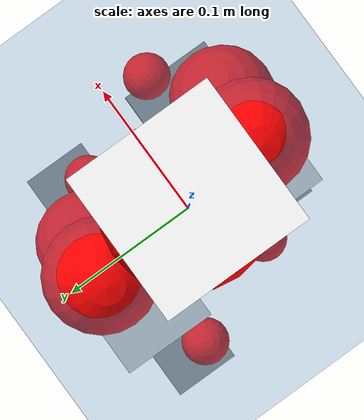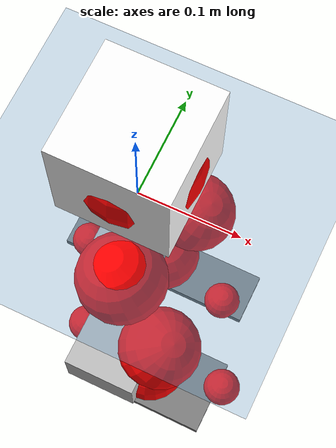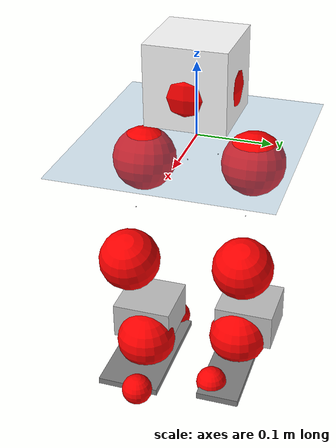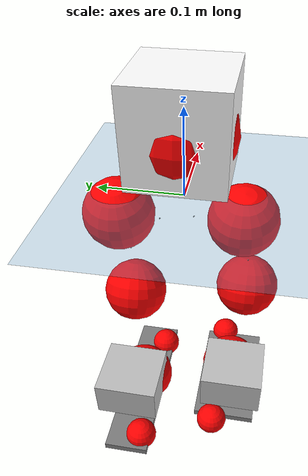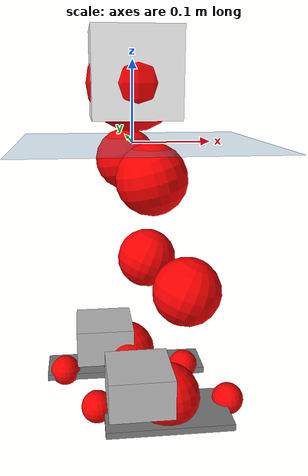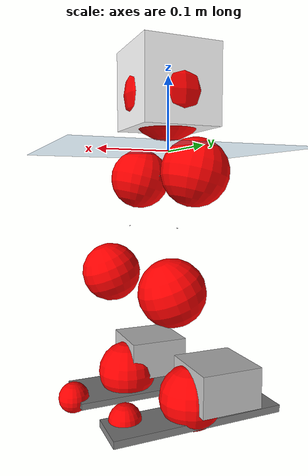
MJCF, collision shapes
<mujoco model="pi_12dof_release_v1">
  <compiler angle="radian" assetdir="assets" balanceinertia="true" inertiafromgeom="false"/>

  <option timestep="0.005" density="1.2" viscosity="2e-05"/>

  <size nkey="1"/>

  <visual>
    <quality shadowsize="8192"/>
    <map shadowclip="0.5"/>
  </visual>

  <default>
    <default class="/">
      <joint armature="0.01" damping="0.01" frictionloss="0.01"/>
      <geom contype="0" conaffinity="0" group="1" solref="-1000 -80"/>
      <site size="0.01 0.005 0.005" group="5"/>
      <general forcelimited="true" biastype="affine" gainprm="20" biasprm="0 -20 -0.5"/>
      <default class="foot">
        <geom size="0.0845 0.036 0.005" type="box" condim="6" group="4" priority="1" friction="0.9 0.2 0.2" solimp="0.015 1 0.005"/>
      </default>
      <default class="reward_collision_sphere">
        <geom group="5" rgba="1 0 0 1"/>
      </default>
    </default>
  </default>

  <asset>
    <texture type="skybox" colorspace="auto" name="//unnamed_texture_0" builtin="gradient" rgb1="0.95 0.95 0.95" rgb2="0.95 0.95 0.95" width="100" height="600"/>
    <texture type="2d" colorspace="auto" name="texplane" builtin="checker" rgb1="0.345 0.575 0.748" rgb2="0.345 0.575 0.748" markrgb="1 1 1" width="512" height="512"/>
    <material name="MatPlane" class="/" texture="texplane" texuniform="true" texrepeat="2 2" specular="0.9"/>
    <mesh name="baselink_1" class="/" file="baselink_1.STL"/>
    <mesh name="r_hip_pitch_link" class="/" file="r_hip_pitch_link.STL"/>
    <mesh name="r_hip_roll_link" class="/" file="r_hip_roll_link.STL"/>
    <mesh name="r_thigh_link" class="/" file="r_thigh_link.STL"/>
    <mesh name="r_calf_link" class="/" file="r_calf_link.STL"/>
    <mesh name="r_ankle_pitch_link" class="/" file="r_ankle_pitch_link.STL"/>
    <mesh name="r_ankle_roll_link" class="/" file="r_ankle_roll_link.STL"/>
    <mesh name="l_hip_pitch_link" class="/" file="l_hip_pitch_link.STL"/>
    <mesh name="l_hip_roll_link" class="/" file="l_hip_roll_link.STL"/>
    <mesh name="l_thigh_link" class="/" file="l_thigh_link.STL"/>
    <mesh name="l_calf_link" class="/" file="l_calf_link.STL"/>
    <mesh name="l_ankle_pitch_link" class="/" file="l_ankle_pitch_link.STL"/>
    <mesh name="l_ankle_roll_link" class="/" file="l_ankle_roll_link.STL"/>
  </asset>

  <worldbody>
    <geom name="floor" class="/" size="100 100 0.125" type="plane" group="0" material="MatPlane"/>
    <light name="toplight_shadow" class="/" pos="0 0 5" dir="0.0990148 0.0990148 -0.990148" type="directional" ambient="0.04 0.04 0.04" diffuse="0.55 0.55 0.55" specular="0.12 0.12 0.12"/>
    <light name="toplight_fill" class="/" pos="0 0 5" dir="0.0990148 0.0990148 -0.990148" type="directional" castshadow="false" ambient="0.04 0.04 0.04" diffuse="0.3 0.3 0.3" specular="0.08 0.08 0.08"/>
    <body name="trunk" pos="0.00162605 0.000795127 -0.00286611" quat="0.999998 -0.000277433 0.00056457 -0.00194793">
      <inertial pos="0.015806 0.00932084 0.0471506" quat="0.692073 0.0129073 0.00902907 0.721656" mass="2.32739" diaginertia="0.0412695 0.00335724 0.00589047"/>
      <joint name="//unnamed_joint_0" type="free"/>
      <geom name="//unnamed_geom_1" class="/" type="mesh" density="0" rgba="1 1 1 1" mesh="baselink_1"/>
      <geom name="//unnamed_geom_2" class="/" size="0.0536545 0.0536545 0.0536545" pos="0 0 0.0856731" type="box" rgba="1 1 1 1"/>
      <geom name="//unnamed_geom_3" class="reward_collision_sphere" size="0.05902" pos="0 0 0.0749639"/>
      <site name="imu" class="/" pos="-0.0532123 0.00222743 0.0529338" size="0.0107309"/>
      <camera name="track" class="/" pos="0 -1.64399 0" quat="0.707107 0.707107 0 0" mode="trackcom"/>
      <camera name="ego_camera" class="/" pos="0.0994772 0 0.192764" quat="-0.5 -0.5 0.5 0.5"/>
      <body name="r_hip_pitch_link" pos="0.00780144 -0.0103956 -0.0307145" quat="0.99222 0.000393185 -0.124498 -0.000119739">
        <inertial pos="0.00276766 -0.0376391 -0.000171757" quat="-0.0182892 0.705961 -0.0285354 0.707439" mass="0.49682" diaginertia="0.000525956 4.71613e-05 0.000136289"/>
        <joint name="r_hip_pitch_joint" class="/" pos="0 0 0" axis="-0.00933391 -0.999754 -0.0201058" range="-1.72223 1.4744" armature="0.0157347" damping="0.0202318" frictionloss="0.012757"/>
        <geom name="//unnamed_geom_4" class="/" type="mesh" density="0" rgba="0.75294 0.75294 0.75294 1" mesh="r_hip_pitch_link"/>
        <geom name="//unnamed_geom_5" class="/" size="0.000536545 0.000536545 0.000536545" type="box" rgba="0.75294 0.75294 0.75294 1"/>
        <body name="r_hip_roll_link" pos="0.00561823 -0.058022 -0.00434008" quat="0.999987 0.000270005 -0.00491514 -0.00112876">
          <inertial pos="0.000159483 0.000860427 -0.0706909" quat="0.681397 -0.0686675 -0.103561 0.721289" mass="0.517007" diaginertia="0.0013538 0.000118569 0.000173865"/>
          <joint name="r_hip_roll_joint" class="/" pos="0 0 0" axis="-0.999289 0.0370753 -0.00692012" stiffness="0.00809437" range="-0.109892 0.505432" armature="0.0139611" damping="0.0569474" frictionloss="0.00479085"/>
          <geom name="//unnamed_geom_6" class="/" type="mesh" density="0" rgba="0.75294 0.75294 0.75294 1" mesh="r_hip_roll_link"/>
          <geom name="//unnamed_geom_7" class="/" size="0.000536545 0.000536545 0.000536545" type="box" rgba="0.75294 0.75294 0.75294 1"/>
          <geom name="//unnamed_geom_8" class="reward_collision_sphere" size="0.0429236"/>
          <body name="r_thigh_link" pos="-0.00482396 -0.00985598 -0.0710846" quat="1 0.000280682 -0.00027154 -0.000429862">
            <inertial pos="0.00134831 0.000332111 -0.0465434" quat="0.733447 0.679722 -0.00564152 -0.00135898" mass="0.142405" diaginertia="0.000573102 3.60446e-05 8.10856e-05"/>
            <joint name="r_thigh_joint" class="/" pos="0 0 0" axis="0.00209322 0.00166707 -0.999996" range="-0.155663 0.591813" armature="0.00436881" damping="0.0147118" frictionloss="0.00817849"/>
            <geom name="//unnamed_geom_9" class="/" type="mesh" density="0" rgba="0.75294 0.75294 0.75294 1" mesh="r_thigh_link"/>
            <geom name="//unnamed_geom_10" class="/" size="0.000536545 0.000536545 0.000536545" type="box" rgba="0.75294 0.75294 0.75294 1"/>
            <body name="r_calf_link" pos="0.0108849 -0.00107939 -0.0736255" quat="0.947694 -3.07141e-05 0.319182 0.000207558">
              <inertial pos="0.00584541 0.0119219 -0.0681305" quat="0.997935 -0.0492132 0.00460182 0.0410164" mass="0.989016" diaginertia="0.0159115 0.00113728 0.000268873"/>
              <joint name="r_calf_joint" class="/" pos="0 0 0" axis="-0.0322826 -0.999379 0.0141368" range="-1.64613 0.574431" armature="0.013401" damping="0.0138037" frictionloss="0.011271"/>
              <geom name="//unnamed_geom_11" class="/" type="mesh" density="0" rgba="0.75294 0.75294 0.75294 1" mesh="r_calf_link"/>
              <geom name="//unnamed_geom_12" class="/" size="0.000536545 0.000536545 0.000536545" type="box" rgba="0.75294 0.75294 0.75294 1"/>
              <geom name="//unnamed_geom_13" class="reward_collision_sphere" size="0.0429236"/>
              <body name="r_ankle_pitch_link" pos="-0.00539123 0.00565858 -0.141079" quat="0.980776 -0.00207875 -0.195121 0.00165267">
                <inertial pos="-0.00456148 0.00522941 0.0054656" quat="-0.00756497 0.712593 0.0236571 0.701138" mass="0.196541" diaginertia="0.0013724 9.32166e-05 0.000147305"/>
                <joint name="r_ankle_pitch_joint" class="/" pos="0 0 0" axis="0.0127718 -0.999408 0.0319351" stiffness="0.0350098" range="-1.49218 0.368296" armature="0.00760724" damping="0.0501041" frictionloss="0.010331"/>
                <geom name="//unnamed_geom_14" class="/" type="mesh" density="0" rgba="0.75294 0.75294 0.75294 1" mesh="r_ankle_pitch_link"/>
                <geom name="//unnamed_geom_15" class="/" size="0.0418505 0.0429236 0.0268273" type="box" rgba="0.75294 0.75294 0.75294 1"/>
                <body name="r_ankle_roll_link" pos="0.105417 0.00672186 -0.00142504" quat="0.999996 0.000580397 0.000992964 -0.00251982">
                  <inertial pos="-0.0236777 0.000648106 -0.0178106" quat="0.533265 0.476642 0.445263 0.538685" mass="0.534167" diaginertia="0.00397818 0.000365603 0.00036367"/>
                  <joint name="r_ankle_roll_joint" class="/" pos="0 0 0" axis="-0.999663 -0.0130483 -0.0224244" range="-0.281344 0.193093" armature="0.00479079" damping="0.00557206" frictionloss="0.00981103"/>
                  <geom name="//unnamed_geom_16" class="/" type="mesh" density="0" rgba="0.75294 0.75294 0.75294 1" mesh="r_ankle_roll_link"/>
                  <geom name="//unnamed_geom_17" class="/" type="mesh" rgba="0.75294 0.75294 0.75294 1" mesh="r_ankle_roll_link"/>
                  <geom name="right_foot" class="foot" size="0.0829853 0.0436331 0.00454776" pos="-0.0676445 0 -0.0471202"/>
                  <geom name="//unnamed_geom_19" class="reward_collision_sphere" size="0.0429236" pos="-0.0663181 0 -0.0214183"/>
                  <geom name="//unnamed_geom_20" class="reward_collision_sphere" size="0.0214618" pos="0.0198954 0.0164399 -0.0428365"/>
                  <geom name="//unnamed_geom_21" class="reward_collision_sphere" size="0.0214618" pos="-0.159163 0.0164399 -0.0428365"/>
                  <site name="right_foot" class="foot" pos="-0.0676445 0 -0.0471202" size="0.0107309"/>
                </body>
              </body>
            </body>
          </body>
        </body>
      </body>
      <body name="l_hip_pitch_link" pos="-0.00970878 0.0263585 -0.0258301" quat="0.992176 -0.000215467 -0.124844 -0.000293839">
        <inertial pos="-0.000196728 0.0377448 0.0111068" quat="-0.0416684 0.734233 0.0343154 0.676748" mass="0.415738" diaginertia="0.000381155 3.44661e-05 0.00013021"/>
        <joint name="l_hip_pitch_joint" class="/" pos="0 0 0" axis="0.00517884 0.999987 -0.000251454" stiffness="0.0323262" range="-1.25234 1.74361" armature="0.0115574" damping="0" frictionloss="0.0143338"/>
        <geom name="//unnamed_geom_22" class="/" type="mesh" density="0" rgba="0.75294 0.75294 0.75294 1" mesh="l_hip_pitch_link"/>
        <geom name="//unnamed_geom_23" class="/" size="0.000536545 0.000536545 0.000536545" type="box" rgba="0.75294 0.75294 0.75294 1"/>
        <body name="l_hip_roll_link" pos="0.00576389 0.0504095 -0.00417604" quat="0.999998 0.00166314 0.000191417 0.000457016">
          <inertial pos="0.0099012 -0.00244167 -0.053818" quat="0.699066 -0.0732689 -0.0854239 0.706145" mass="0.54648" diaginertia="0.00171409 0.00010339 0.000189386"/>
          <joint name="l_hip_roll_joint" class="/" pos="0 0 0" axis="-0.999985 0.00140152 -0.00526716" range="-0.557607 0.131428" armature="0.0116225" damping="0" frictionloss="0.0136792"/>
          <geom name="//unnamed_geom_24" class="/" type="mesh" density="0" rgba="0.75294 0.75294 0.75294 1" mesh="l_hip_roll_link"/>
          <geom name="//unnamed_geom_25" class="/" size="0.000536545 0.000536545 0.000536545" type="box" rgba="0.75294 0.75294 0.75294 1"/>
          <geom name="//unnamed_geom_26" class="reward_collision_sphere" size="0.0429236"/>
          <body name="l_thigh_link" pos="0.00478557 -0.0034723 -0.0716852" quat="1 -0.00020033 0.000778134 -0.000471518">
            <inertial pos="-0.00486211 -0.0106654 -0.048484" quat="0.66694 0.744547 0.0285808 -0.00501818" mass="0.116827" diaginertia="0.000468026 2.63486e-05 6.66198e-05"/>
            <joint name="l_thigh_joint" class="/" pos="0 0 0" axis="0.000673961 -6.48801e-05 -1" stiffness="0.0454473" range="-0.381451 0.41683" armature="0.00941599" damping="0.00392689" frictionloss="0.0115846"/>
            <geom name="//unnamed_geom_27" class="/" type="mesh" density="0" rgba="0.75294 0.75294 0.75294 1" mesh="l_thigh_link"/>
            <geom name="//unnamed_geom_28" class="/" size="0.000536545 0.000536545 0.000536545" type="box" rgba="0.75294 0.75294 0.75294 1"/>
            <body name="l_calf_link" pos="-0.0125298 0.000686911 -0.0790439" quat="0.947678 0.000527141 0.319225 0.000692808">
              <inertial pos="0.00615433 -0.00212791 -0.0634583" quat="0.997591 0.0613923 -0.00943248 0.0308823" mass="1.03123" diaginertia="0.0168003 0.00154437 0.00028222"/>
              <joint name="l_calf_joint" class="/" pos="0 0 0" axis="0.015455 0.999109 -0.0392621" range="-0.674617 1.59241" armature="0.0108526" damping="0.042533" frictionloss="0.00904498"/>
              <geom name="//unnamed_geom_29" class="/" type="mesh" density="0" rgba="0.75294 0.75294 0.75294 1" mesh="l_calf_link"/>
              <geom name="//unnamed_geom_30" class="/" size="0.000536545 0.000536545 0.000536545" type="box" rgba="0.75294 0.75294 0.75294 1"/>
              <geom name="//unnamed_geom_31" class="reward_collision_sphere" size="0.0429236"/>
              <body name="l_ankle_pitch_link" pos="-0.0114703 -0.00285128 -0.139813" quat="0.979366 0.00137569 -0.202074 -0.00248717">
                <inertial pos="0.00758704 -0.00638925 -0.00140902" quat="-1.74685e-05 0.707605 0.00496014 0.706591" mass="0.257094" diaginertia="0.0014953 8.86666e-05 0.000181312"/>
                <joint name="l_ankle_pitch_joint" class="/" pos="0 0 0" axis="0.00690454 0.999961 0.00547088" range="-0.405267 1.43248" armature="0.0138934" damping="0" frictionloss="0.00871867"/>
                <geom name="//unnamed_geom_32" class="/" type="mesh" density="0" rgba="0.75294 0.75294 0.75294 1" mesh="l_ankle_pitch_link"/>
                <geom name="//unnamed_geom_33" class="/" size="0.0418505 0.0429236 0.0268273" type="box" rgba="0.75294 0.75294 0.75294 1"/>
                <body name="l_ankle_roll_link" pos="0.0988702 -0.00849661 0.000881579" quat="0.999986 0.000618756 0.00503005 0.00155912">
                  <inertial pos="-0.0403949 0.00412719 -0.017596" quat="0.588056 0.403203 0.431805 0.552414" mass="0.61384" diaginertia="0.00481353 0.000384962 0.000425851"/>
                  <joint name="l_ankle_roll_joint" class="/" pos="0 0 0" axis="-0.999958 -0.00538789 -0.00738366" stiffness="0.0517987" range="-0.337554 0.29042" armature="0.00581366" damping="0" frictionloss="0.00850716"/>
                  <geom name="//unnamed_geom_34" class="/" type="mesh" density="0" rgba="0.75294 0.75294 0.75294 1" mesh="l_ankle_roll_link"/>
                  <geom name="//unnamed_geom_35" class="/" type="mesh" rgba="0.75294 0.75294 0.75294 1" mesh="l_ankle_roll_link"/>
                  <geom name="left_foot" class="foot" size="0.117374 0.0298018 0.00484104" pos="-0.0676445 0 -0.0471202"/>
                  <geom name="//unnamed_geom_37" class="reward_collision_sphere" size="0.0429236" pos="-0.0663181 0 -0.0214183"/>
                  <geom name="//unnamed_geom_38" class="reward_collision_sphere" size="0.0214618" pos="0.0198954 -0.0164399 -0.0428365"/>
                  <geom name="//unnamed_geom_39" class="reward_collision_sphere" size="0.0214618" pos="-0.159163 -0.0164399 -0.0428365"/>
                  <site name="left_foot" class="foot" pos="-0.0676445 0 -0.0471202" size="0.0107309"/>
                </body>
              </body>
            </body>
          </body>
        </body>
      </body>
    </body>
  </worldbody>

  <contact>
    <pair class="/" geom1="floor" geom2="right_foot" name="//unnamed_contact_1"/>
    <pair class="/" geom1="floor" geom2="left_foot" name="//unnamed_contact_0"/>
  </contact>

  <actuator>
    <general name="r_hip_pitch_joint" class="/" joint="r_hip_pitch_joint" forcerange="-15.4161 15.4161" gainprm="28.3309" biasprm="0 -28.3309 -0.596152"/>
    <general name="r_hip_roll_joint" class="/" joint="r_hip_roll_joint" forcerange="-23.2557 23.2557" gainprm="28.3309" biasprm="0 -28.3309 -0.596152"/>
    <general name="r_thigh_joint" class="/" joint="r_thigh_joint" forcerange="-23.5255 23.5255" gainprm="28.3309" biasprm="0 -28.3309 -0.596152"/>
    <general name="r_calf_joint" class="/" joint="r_calf_joint" forcerange="-13.7399 13.7399" gainprm="28.3309" biasprm="0 -28.3309 -0.596152"/>
    <general name="r_ankle_pitch_joint" class="/" joint="r_ankle_pitch_joint" forcerange="-22.1288 22.1288" gainprm="28.3309" biasprm="0 -28.3309 -0.596152"/>
    <general name="r_ankle_roll_joint" class="/" joint="r_ankle_roll_joint" forcerange="-21.9727 21.9727" gainprm="28.3309" biasprm="0 -28.3309 -0.596152"/>
    <general name="l_hip_pitch_joint" class="/" joint="l_hip_pitch_joint" forcerange="-29.4266 29.4266" gainprm="28.3309" biasprm="0 -28.3309 -0.596152"/>
    <general name="l_hip_roll_joint" class="/" joint="l_hip_roll_joint" forcerange="-31.9989 31.9989" gainprm="28.3309" biasprm="0 -28.3309 -0.596152"/>
    <general name="l_thigh_joint" class="/" joint="l_thigh_joint" forcerange="-24.8252 24.8252" gainprm="28.3309" biasprm="0 -28.3309 -0.596152"/>
    <general name="l_calf_joint" class="/" joint="l_calf_joint" forcerange="-23.9218 23.9218" gainprm="28.3309" biasprm="0 -28.3309 -0.596152"/>
    <general name="l_ankle_pitch_joint" class="/" joint="l_ankle_pitch_joint" forcerange="-16.4603 16.4603" gainprm="28.3309" biasprm="0 -28.3309 -0.596152"/>
    <general name="l_ankle_roll_joint" class="/" joint="l_ankle_roll_joint" forcerange="-23.1137 23.1137" gainprm="28.3309" biasprm="0 -28.3309 -0.596152"/>
  </actuator>

  <sensor>
    <gyro site="imu" name="imu_angular_velocity"/>
    <velocimeter site="imu" name="imu_linear_velocity"/>
    <framelinvel objtype="site" objname="left_foot" name="left_foot_global_linear_velocity"/>
    <framelinvel objtype="site" objname="right_foot" name="right_foot_global_linear_velocity"/>
  </sensor>

  <keyframe>
    <key name="home" qpos="0 0 0.291 1 0 0 0 0.4 0 0 -0.8 0.4 0 -0.4 0 0 0.8 -0.4 0"/>
  </keyframe>
</mujoco>
